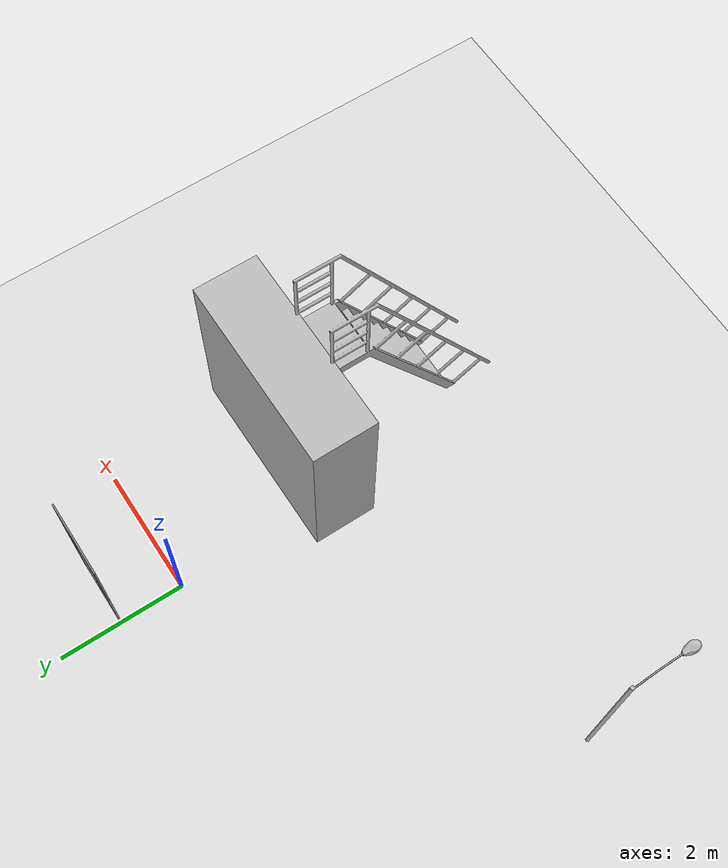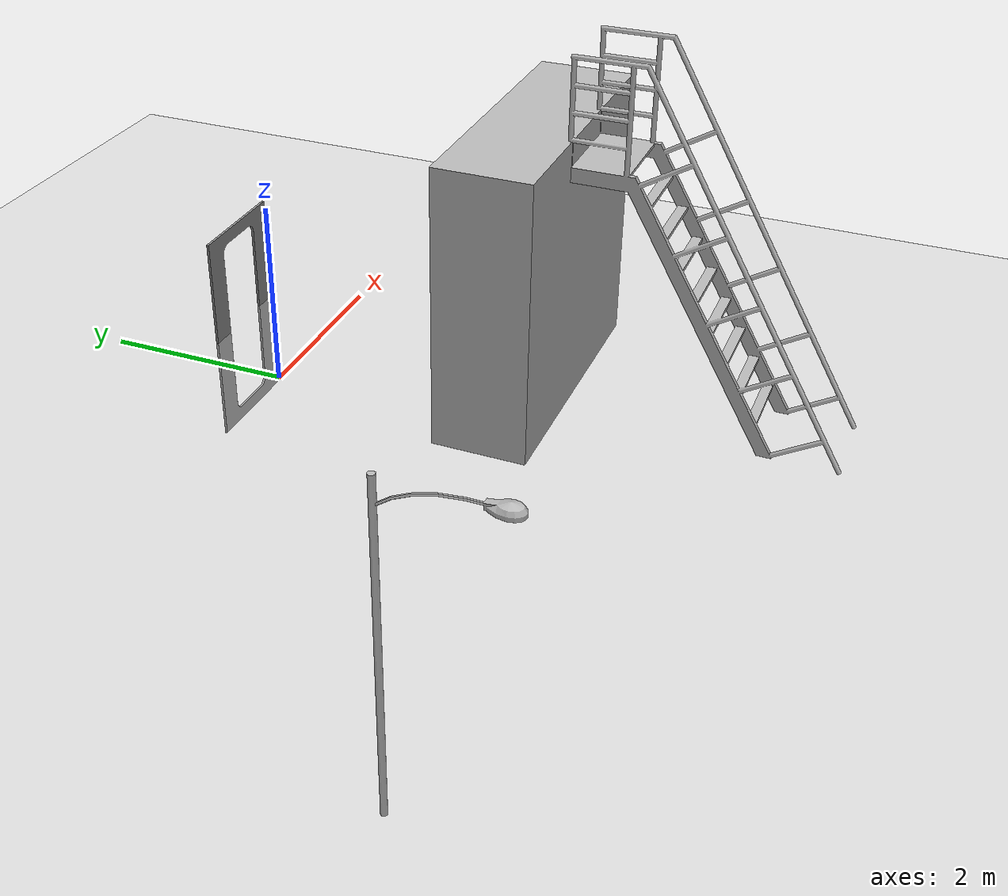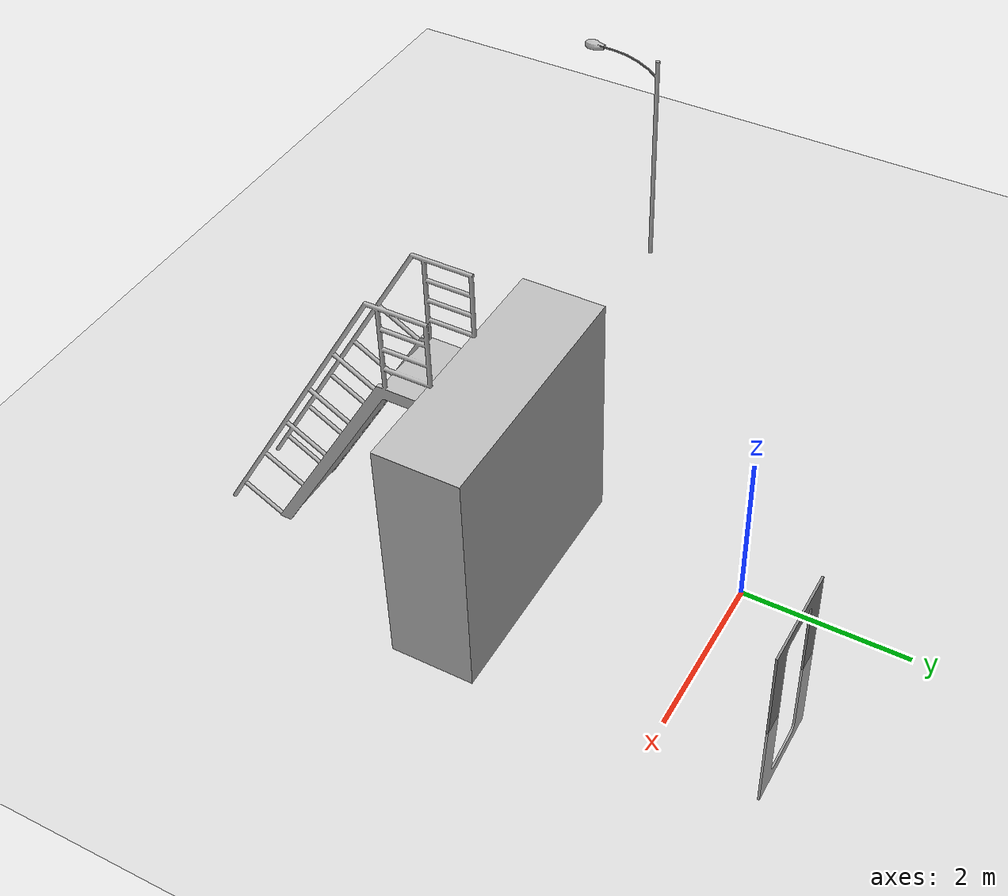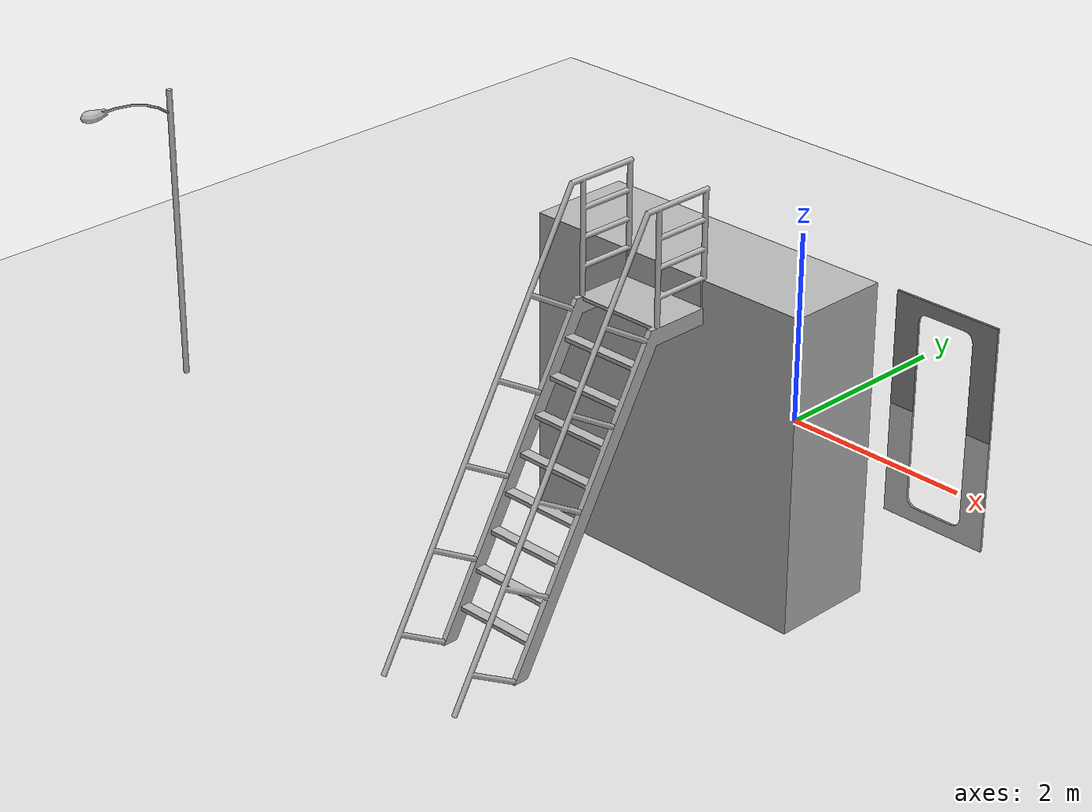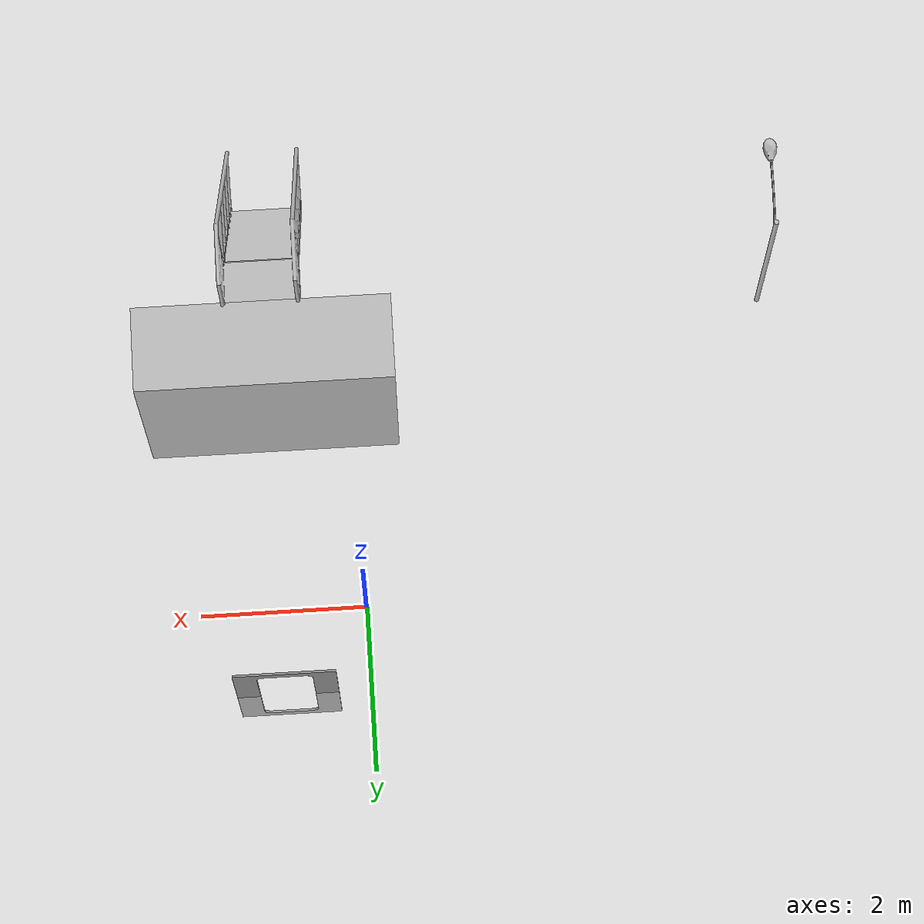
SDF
<sdf version="1.4">
 <world name="default">
  <light name="sun" type="directional">
   <pose>0 0 10 0 -0 0</pose>
   <diffuse>0.8 0.8 0.8 1</diffuse>
   <specular>0.2 0.2 0.2 1</specular>
   <attenuation>
    <range>1000</range>
    <constant>0.9</constant>
    <linear>0.01</linear>
    <quadratic>0.001</quadratic>
   </attenuation>
   <direction>-0.5 0.1 -0.9</direction>
  </light>
  <model name="ground_plane">
   <static>1</static>
   <link name="link">
    <collision name="collision">
     <geometry><plane><normal>0 0 1</normal><size>100 100</size></plane></geometry>
     <surface><friction><ode><mu>100</mu><mu2>50</mu2></ode></friction></surface>
    </collision>
    <visual name="visual">
     <cast_shadows>0</cast_shadows>
     <geometry><plane><normal>0 0 1</normal><size>100 100</size></plane></geometry>
     <material>
      <script><uri>file://media/materials/scripts/gazebo.material</uri><name>Gazebo/Grey</name></script>
     </material>
    </visual>
    <velocity_decay><linear>0</linear><angular>0</angular></velocity_decay>
   </link>
  </model>
  <physics type="ode">
   <max_step_size>0.001</max_step_size>
   <real_time_factor>1</real_time_factor>
   <real_time_update_rate>1000</real_time_update_rate>
   <gravity>0 0 -9.8</gravity>
  </physics>
  <scene><ambient>0.4 0.4 0.4 1</ambient><background>0.7 0.7 0.7 1</background><shadows>1</shadows></scene>
  <model name="brick_box_3x1x3">
   <static>1</static>
   <link name="chassis">
    <pose>0 0 1.5 0 -0 0</pose>
    <collision name="collision"><geometry><box><size>3 1 3</size></box></geometry></collision>
    <visual name="visual">
     <geometry><mesh><uri>model://brick_box_3x1x3/meshes/simple_box.dae</uri><scale>3 1 3</scale></mesh></geometry>
     <material>
      <script>
       <uri>model://brick_box_3x1x3/materials/scripts</uri>
       <uri>model://brick_box_3x1x3/materials/textures</uri>
       <name>BrickBox/Diffuse</name>
      </script>
     </material>
    </visual>
    <velocity_decay><linear>0</linear><angular>0</angular></velocity_decay>
   </link>
   <pose>1 -2.51112 0 0 -0 0</pose>
  </model>
  <model name="ladder">
   <static>1</static>
   <link name="link">
    <collision name="step0">
     <pose>0 -0.96703 0.286 0 -0 0</pose>
     <geometry><box><size>0.9 0.1016 0.0381</size></box></geometry>
    </collision>
    <collision name="step1">
     <pose>0 -0.79106 0.59054 0 -0 0</pose>
     <geometry><box><size>0.9 0.1016 0.0381</size></box></geometry>
    </collision>
    <collision name="step2">
     <pose>0 -0.61509 0.89508 0 -0 0</pose>
     <geometry><box><size>0.9 0.1016 0.0381</size></box></geometry>
    </collision>
    <collision name="step3">
     <pose>0 -0.43912 1.19962 0 -0 0</pose>
     <geometry><box><size>0.9 0.1016 0.0381</size></box></geometry>
    </collision>
    <collision name="step4">
     <pose>0 -0.26315 1.50416 0 -0 0</pose>
     <geometry><box><size>0.9 0.1016 0.0381</size></box></geometry>
    </collision>
    <collision name="step5">
     <pose>0 -0.08718 1.8087 0 -0 0</pose>
     <geometry><box><size>0.9 0.1016 0.0381</size></box></geometry>
    </collision>
    <collision name="step6">
     <pose>0 0.08879 2.11324 0 -0 0</pose>
     <geometry><box><size>0.9 0.1016 0.0381</size></box></geometry>
    </collision>
    <collision name="step7">
     <pose>0 0.26476 2.41778 0 -0 0</pose>
     <geometry><box><size>0.9 0.1016 0.0381</size></box></geometry>
    </collision>
    <collision name="landing">
     <pose>0 0.73039 2.72432 0 -0 0</pose>
     <geometry><box><size>0.9 0.6096 0.0381</size></box></geometry>
    </collision>
    <collision name="left_side_wall">
     <pose>-0.43217 -0.37451 1.3386 1.0472 -0 0</pose>
     <geometry><box><size>0.0508 3.16758 0.13</size></box></geometry>
    </collision>
    <collision name="left_side_landing_wall">
     <pose>-0.43217 0.69819 2.667 0 -0 0</pose>
     <geometry><box><size>0.0508 0.67401 0.1524</size></box></geometry>
    </collision>
    <collision name="left_railing_landing_3">
     <pose>-0.433355 0.66933 3.81 1.5707 -0 0</pose>
     <geometry><cylinder><radius>0.02413</radius><length>0.73172</length></cylinder></geometry>
    </collision>
    <collision name="left_railing_landing_2">
     <pose>-0.433355 0.73166 3.5433 1.5707 -0 0</pose>
     <geometry><cylinder><radius>0.02413</radius><length>0.5588</length></cylinder></geometry>
    </collision>
    <collision name="left_railing_landing_1">
     <pose>-0.433355 0.73166 3.2766 1.5707 -0 0</pose>
     <geometry><cylinder><radius>0.02413</radius><length>0.5588</length></cylinder></geometry>
    </collision>
    <collision name="left_railing_landing_0">
     <pose>-0.433355 0.73166 3.0099 1.5707 -0 0</pose>
     <geometry><cylinder><radius>0.02413</radius><length>0.5588</length></cylinder></geometry>
    </collision>
    <collision name="left_railing_landing_upright_back">
     <pose>-0.433355 1.01088 3.2766 0 -0 0</pose>
     <geometry><cylinder><radius>0.02413</radius><length>1.0668</length></cylinder></geometry>
    </collision>
    <collision name="left_railing_landing_upright_front">
     <pose>-0.433355 0.45208 3.2766 0 -0 0</pose>
     <geometry><cylinder><radius>0.02413</radius><length>1.0668</length></cylinder></geometry>
    </collision>
    <collision name="left_railing_upright_4">
     <pose>-0.433355 0.0699 2.80986 1.03414 -0 0</pose>
     <geometry><cylinder><radius>0.02413</radius><length>0.57</length></cylinder></geometry>
    </collision>
    <collision name="left_railing_upright_3">
     <pose>-0.433355 -0.31006 2.15169 1.03414 -0 0</pose>
     <geometry><cylinder><radius>0.02413</radius><length>0.57</length></cylinder></geometry>
    </collision>
    <collision name="left_railing_upright_2">
     <pose>-0.433355 -0.6911 1.49172 1.03414 -0 0</pose>
     <geometry><cylinder><radius>0.02413</radius><length>0.57</length></cylinder></geometry>
    </collision>
    <collision name="left_railing_upright_1">
     <pose>-0.433355 -1.0732 0.82995 1.03414 -0 0</pose>
     <geometry><cylinder><radius>0.02413</radius><length>0.57</length></cylinder></geometry>
    </collision>
    <collision name="left_railing_upright_0">
     <pose>-0.433355 -1.45316 0.17179 1.03414 -0 0</pose>
     <geometry><cylinder><radius>0.02413</radius><length>0.57</length></cylinder></geometry>
    </collision>
    <collision name="left_railing_long">
     <pose>-0.433355 -0.781 1.9068 -0.523503 0 0</pose>
     <geometry><cylinder><radius>0.02413</radius><length>4.42295</length></cylinder></geometry>
    </collision>
    <collision name="right_side_wall">
     <pose>0.43217 -0.37451 1.3386 1.0472 -0 0</pose>
     <geometry><box><size>0.0508 3.16758 0.13</size></box></geometry>
    </collision>
    <collision name="right_side_landing_wall">
     <pose>0.43217 0.69819 2.667 0 -0 0</pose>
     <geometry><box><size>0.0508 0.67401 0.1524</size></box></geometry>
    </collision>
    <collision name="right_railing_landing_3">
     <pose>0.433355 0.66933 3.81 1.5707 -0 0</pose>
     <geometry><cylinder><radius>0.02413</radius><length>0.73172</length></cylinder></geometry>
    </collision>
    <collision name="right_railing_landing_2">
     <pose>0.433355 0.73166 3.5433 1.5707 -0 0</pose>
     <geometry><cylinder><radius>0.02413</radius><length>0.5588</length></cylinder></geometry>
    </collision>
    <collision name="right_railing_landing_1">
     <pose>0.433355 0.73166 3.2766 1.5707 -0 0</pose>
     <geometry><cylinder><radius>0.02413</radius><length>0.5588</length></cylinder></geometry>
    </collision>
    <collision name="right_railing_landing_0">
     <pose>0.433355 0.73166 3.0099 1.5707 -0 0</pose>
     <geometry><cylinder><radius>0.02413</radius><length>0.5588</length></cylinder></geometry>
    </collision>
    <collision name="right_railing_landing_upright_back">
     <pose>0.433355 1.01088 3.2766 0 -0 0</pose>
     <geometry><cylinder><radius>0.02413</radius><length>1.0668</length></cylinder></geometry>
    </collision>
    <collision name="right_railing_landing_upright_front">
     <pose>0.433355 0.45208 3.2766 0 -0 0</pose>
     <geometry><cylinder><radius>0.02413</radius><length>1.0668</length></cylinder></geometry>
    </collision>
    <collision name="right_railing_upright_4">
     <pose>0.433355 0.0699 2.80986 1.03414 -0 0</pose>
     <geometry><cylinder><radius>0.02413</radius><length>0.57</length></cylinder></geometry>
    </collision>
    <collision name="right_railing_upright_3">
     <pose>0.433355 -0.31006 2.15169 1.03414 -0 0</pose>
     <geometry><cylinder><radius>0.02413</radius><length>0.57</length></cylinder></geometry>
    </collision>
    <collision name="right_railing_upright_2">
     <pose>0.433355 -0.6911 1.49172 1.03414 -0 0</pose>
     <geometry><cylinder><radius>0.02413</radius><length>0.57</length></cylinder></geometry>
    </collision>
    <collision name="right_railing_upright_1">
     <pose>0.433355 -1.0732 0.82995 1.03414 -0 0</pose>
     <geometry><cylinder><radius>0.02413</radius><length>0.57</length></cylinder></geometry>
    </collision>
    <collision name="right_railing_upright_0">
     <pose>0.433355 -1.45316 0.17179 1.03414 -0 0</pose>
     <geometry><cylinder><radius>0.02413</radius><length>0.57</length></cylinder></geometry>
    </collision>
    <collision name="right_railing_long">
     <pose>0.433355 -0.781 1.9068 -0.523503 0 0</pose>
     <geometry><cylinder><radius>0.02413</radius><length>4.42295</length></cylinder></geometry>
    </collision>
    <visual name="visual">
     <geometry><mesh><uri>model://drc_practice_ladder/meshes/ladder.dae</uri></mesh></geometry>
    </visual>
    <velocity_decay><linear>0</linear><angular>0</angular></velocity_decay>
   </link>
   <pose>1 -4 0 0 -0 0</pose>
  </model>
  <model name="door_4x8">
   <static>1</static>
   <link name="door">
    <collision name="collision">
     <geometry><mesh><uri>model://drc_practice_door_4x8/meshes/4x8ftdoor.dae</uri></mesh></geometry>
    </collision>
    <visual name="visual">
     <geometry><mesh><uri>model://drc_practice_door_4x8/meshes/4x8ftdoor.dae</uri></mesh></geometry>
    </visual>
    <velocity_decay><linear>0</linear><angular>0</angular></velocity_decay>
   </link>
   <pose>1 1 0 0 -0 0</pose>
  </model>
  <model name="Lamp Post">
   <static>1</static>
   <link name="link">
    <collision name="collision">
     <geometry><mesh><uri>model://lamp_post/meshes/lamp_post.dae</uri></mesh></geometry>
    </collision>
    <visual name="visual">
     <geometry><mesh><uri>model://lamp_post/meshes/lamp_post.dae</uri></mesh></geometry>
    </visual>
    <velocity_decay><linear>0</linear><angular>0</angular></velocity_decay>
   </link>
   <pose>-5 -3.59311 0 0 -0 0</pose>
  </model>
 </world>
</sdf>
